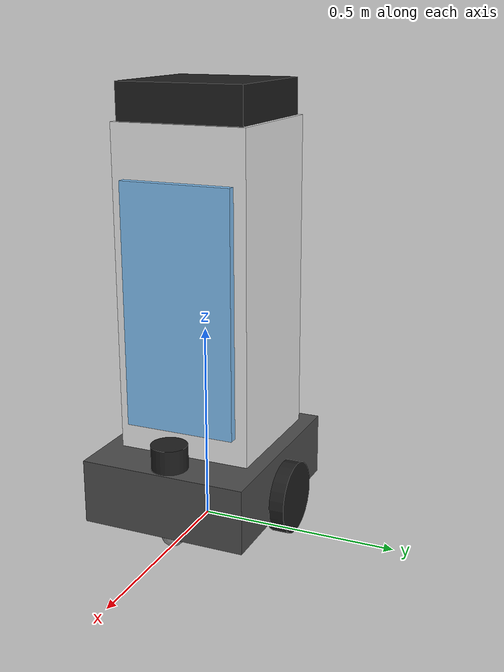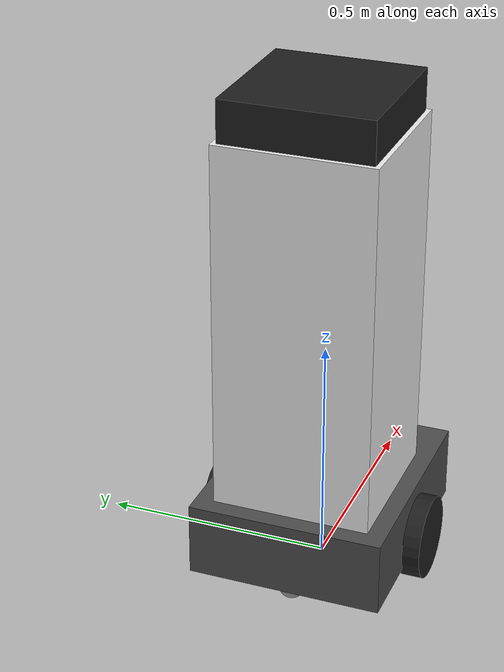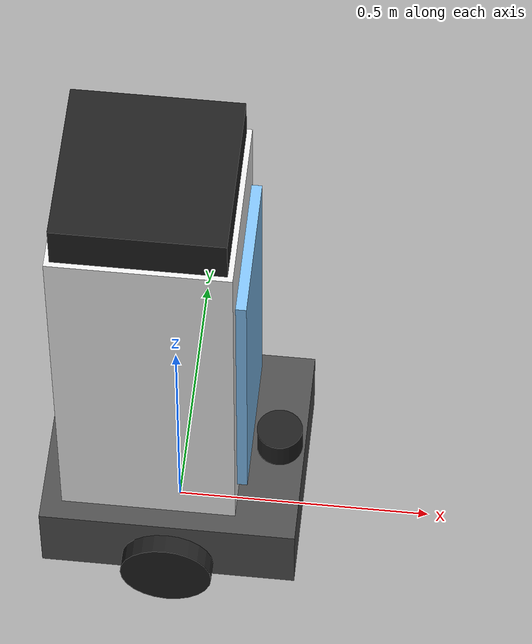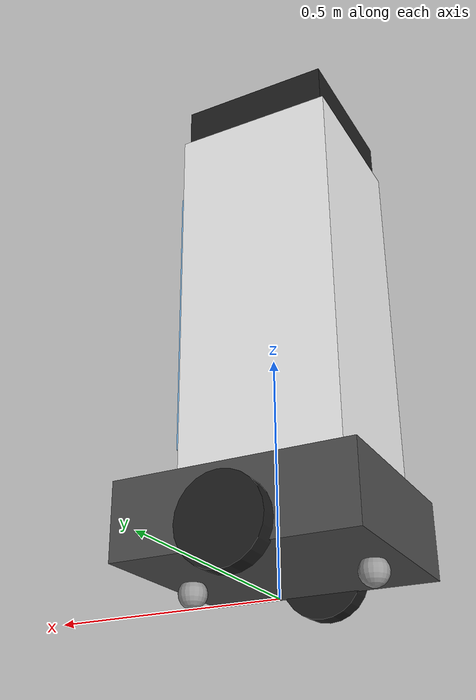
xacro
<?xml version="1.0"?>
<robot xmlns:xacro="http://www.ros.org/wiki/xacro" name="bglx_rover">

  <!-- Drive base -->
  <xacro:property name="base_x"      value="0.50"/>
  <xacro:property name="base_y"      value="0.42"/>
  <xacro:property name="base_z"      value="0.16"/>
  <xacro:property name="base_mass"   value="10.0"/>
  <xacro:property name="base_h"      value="0.13"/>

  <!-- Wheels -->
  <xacro:property name="wheel_radius" value="0.09"/>
  <xacro:property name="wheel_width"  value="0.045"/>
  <xacro:property name="wheel_sep"    value="0.45"/>
  <xacro:property name="wheel_mass"   value="0.6"/>

  <!-- Cargo column -->
  <xacro:property name="col_x"    value="0.34"/>
  <xacro:property name="col_y"    value="0.34"/>
  <xacro:property name="col_z"    value="0.80"/>
  <xacro:property name="col_mass" value="6.0"/>
  <xacro:property name="col_off"  value="-0.04"/>

  <xacro:property name="caster_r" value="0.03"/>

  <xacro:include filename="$(find bglx_rover_description)/urdf/macros/inertia_macros.xacro"/>
  <xacro:include filename="$(find bglx_rover_description)/urdf/control/rover_ros2_control.xacro"/>
  <xacro:include filename="$(find bglx_rover_description)/urdf/gazebo/gazebo_config.xacro"/>

  <link name="base_footprint"/>
  <joint name="base_joint" type="fixed">
    <parent link="base_footprint"/>
    <child  link="base_link"/>
    <origin xyz="0 0 ${base_h}"/>
  </joint>

  <link name="base_link">
    <visual><geometry><box size="${base_x} ${base_y} ${base_z}"/></geometry></visual>
    <collision><geometry><box size="${base_x} ${base_y} ${base_z}"/></geometry></collision>
    <xacro:box_inertia m="${base_mass}" x="${base_x}" y="${base_y}" z="${base_z}">
      <origin xyz="0 0 0" rpy="0 0 0"/>
    </xacro:box_inertia>
  </link>

  <xacro:macro name="wheel" params="prefix reflect">
    <link name="${prefix}_wheel">
      <visual>
        <origin rpy="1.5708 0 0"/>
        <geometry><cylinder radius="${wheel_radius}" length="${wheel_width}"/></geometry>
      </visual>
      <collision>
        <origin rpy="1.5708 0 0"/>
        <geometry><cylinder radius="${wheel_radius}" length="${wheel_width}"/></geometry>
      </collision>
      <xacro:cylinder_inertia m="${wheel_mass}" r="${wheel_radius}" h="${wheel_width}">
        <origin xyz="0 0 0" rpy="1.5708 0 0"/>
      </xacro:cylinder_inertia>
    </link>
    <joint name="${prefix}_wheel_joint" type="continuous">
      <parent link="base_link"/>
      <child  link="${prefix}_wheel"/>
      <origin xyz="0 ${reflect*wheel_sep/2} ${wheel_radius - base_h}"/>
      <axis xyz="0 1 0"/>
      <limit effort="10.0" velocity="20.0"/>
      <dynamics damping="0.02" friction="0.0"/>
    </joint>
  </xacro:macro>
  <xacro:wheel prefix="left"  reflect="1"/>
  <xacro:wheel prefix="right" reflect="-1"/>

  <xacro:macro name="caster" params="prefix x">
    <link name="caster_${prefix}">
      <visual><geometry><sphere radius="${caster_r}"/></geometry></visual>
      <collision><geometry><sphere radius="${caster_r}"/></geometry></collision>
      <xacro:sphere_inertia m="0.1" r="${caster_r}">
        <origin xyz="0 0 0" rpy="0 0 0"/>
      </xacro:sphere_inertia>
    </link>
    <joint name="caster_${prefix}_joint" type="fixed">
      <parent link="base_link"/>
      <child  link="caster_${prefix}"/>
      <origin xyz="${x} 0 ${caster_r - base_h}"/>
    </joint>
  </xacro:macro>
  <xacro:caster prefix="front" x="0.19"/>
  <xacro:caster prefix="rear"  x="-0.19"/>

  <!-- Cargo column -->
  <link name="cargo_column">
    <visual><geometry><box size="${col_x} ${col_y} ${col_z}"/></geometry></visual>
    <collision><geometry><box size="${col_x} ${col_y} ${col_z}"/></geometry></collision>
    <xacro:box_inertia m="${col_mass}" x="${col_x}" y="${col_y}" z="${col_z}">
      <origin xyz="0 0 0" rpy="0 0 0"/>
    </xacro:box_inertia>
  </link>
  <joint name="cargo_column_joint" type="fixed">
    <parent link="base_link"/>
    <child  link="cargo_column"/>
    <origin xyz="${col_off} 0 ${base_z/2 + col_z/2}"/>
  </joint>

  <!-- Cargo door (visual accent) -->
  <link name="cargo_door">
    <visual><geometry><box size="0.02 0.28 0.60"/></geometry></visual>
    <xacro:box_inertia m="0.2" x="0.02" y="0.28" z="0.60">
      <origin xyz="0 0 0" rpy="0 0 0"/>
    </xacro:box_inertia>
  </link>
  <joint name="cargo_door_joint" type="fixed">
    <parent link="cargo_column"/>
    <child  link="cargo_door"/>
    <origin xyz="${col_x/2 + 0.011} 0 -0.03"/>
  </joint>

  <!-- Head -->
  <link name="head">
    <visual><geometry><box size="0.32 0.32 0.09"/></geometry></visual>
    <collision><geometry><box size="0.32 0.32 0.09"/></geometry></collision>
    <xacro:box_inertia m="1.0" x="0.32" y="0.32" z="0.09">
      <origin xyz="0 0 0" rpy="0 0 0"/>
    </xacro:box_inertia>
  </link>
  <joint name="head_joint" type="fixed">
    <parent link="cargo_column"/>
    <child  link="head"/>
    <origin xyz="0 0 ${col_z/2 + 0.045}"/>
  </joint>

  <!-- Forward nav lidar, mounted ahead of the column -->
  <link name="lidar_link">
    <visual><geometry><cylinder radius="0.045" length="0.06"/></geometry></visual>
    <collision><geometry><cylinder radius="0.045" length="0.06"/></geometry></collision>
    <xacro:cylinder_inertia m="0.2" r="0.045" h="0.06">
      <origin xyz="0 0 0" rpy="0 0 0"/>
    </xacro:cylinder_inertia>
  </link>
  <joint name="lidar_joint" type="fixed">
    <parent link="base_link"/>
    <child  link="lidar_link"/>
    <origin xyz="0.20 0 ${base_z/2 + 0.03}"/>
  </joint>

  <link name="imu_link">
    <visual><geometry><box size="0.03 0.03 0.03"/></geometry></visual>
    <xacro:box_inertia m="0.05" x="0.03" y="0.03" z="0.03">
      <origin xyz="0 0 0" rpy="0 0 0"/>
    </xacro:box_inertia>
  </link>
  <joint name="imu_joint" type="fixed">
    <parent link="base_link"/>
    <child  link="imu_link"/>
    <origin xyz="0 0 0.04"/>
  </joint>

</robot>

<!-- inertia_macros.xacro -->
<robot xmlns:xacro="http://www.ros.org/wiki/xacro">
  <xacro:macro name="box_inertia" params="m x y z *origin">
    <inertial>
      <xacro:insert_block name="origin"/>
      <mass value="${m}"/>
      <inertia ixx="${m*(y*y+z*z)/12}" ixy="0" ixz="0"
               iyy="${m*(x*x+z*z)/12}" iyz="0"
               izz="${m*(x*x+y*y)/12}"/>
    </inertial>
  </xacro:macro>
  <xacro:macro name="cylinder_inertia" params="m r h *origin">
    <inertial>
      <xacro:insert_block name="origin"/>
      <mass value="${m}"/>
      <inertia ixx="${m*(3*r*r+h*h)/12}" ixy="0" ixz="0"
               iyy="${m*(3*r*r+h*h)/12}" iyz="0"
               izz="${m*r*r/2}"/>
    </inertial>
  </xacro:macro>
  <xacro:macro name="sphere_inertia" params="m r *origin">
    <inertial>
      <xacro:insert_block name="origin"/>
      <mass value="${m}"/>
      <inertia ixx="${2*m*r*r/5}" ixy="0" ixz="0"
               iyy="${2*m*r*r/5}" iyz="0"
               izz="${2*m*r*r/5}"/>
    </inertial>
  </xacro:macro>
</robot>
